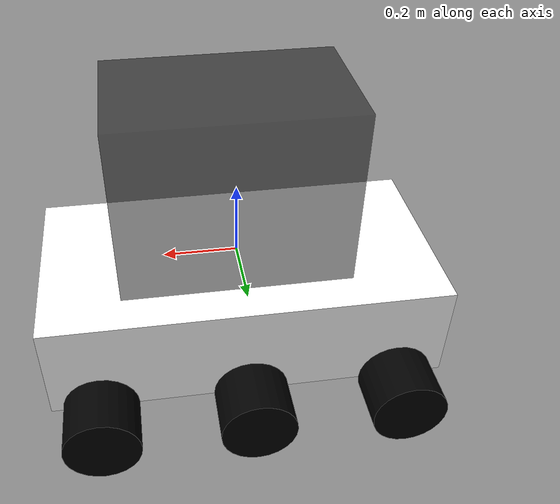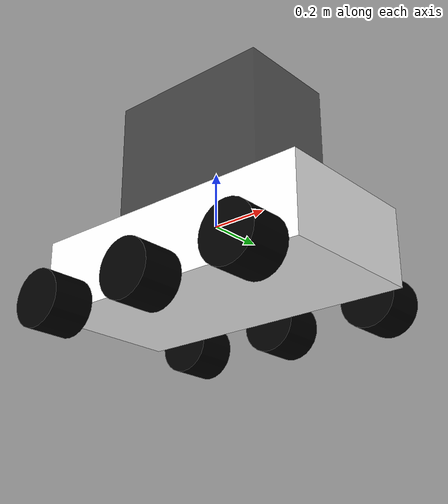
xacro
<?xml version="1.0"?>
<robot xmlns:xacro="http://www.ros.org/wiki/xacro" >

    <xacro:include filename="inertial_macros.xacro"/>

    <xacro:property name="chassis_length" value="1.064"/>
    <xacro:property name="chassis_width" value="0.545"/>
    <xacro:property name="chassis_height" value="0.273"/>
    <xacro:property name="chassis_mass" value="140.0"/>
    <xacro:property name="wheel_radius" value="0.1"/>
    <xacro:property name="wheel_thickness" value="0.15"/>
    <xacro:property name="wheel_mass" value="20.0"/>
    <xacro:property name="wheel_offset_x" value="0.532"/>
    <xacro:property name="wheel_offset_y" value="${chassis_width/2 + wheel_thickness/2}"/>
    <xacro:property name="wheel_offset_z" value="${chassis_height}"/>
    <xacro:property name="wheel_spacing" value="0.4"/>
    <xacro:property name="caster_wheel_radius" value="${wheel_radius}"/>
    <xacro:property name="caster_wheel_mass" value="0.01"/>
    <xacro:property name="caster_wheel_offset_x" value="${chassis_length/2 - caster_wheel_radius}"/>
    <xacro:property name="caster_wheel_offset_z" value="${chassis_height}"/>

    <material name="white">
        <color rgba="1 1 1 1" />
    </material>

    <material name="orange">
        <color rgba="1 0.3 0.1 1"/>
    </material>

    <material name="blue">
        <color rgba="0.2 0.2 1 1"/>
    </material>

    <material name="black">
        <color rgba="0 0 0 1"/>
    </material>

    <material name="black_t">
        <color rgba="0 0 0 0.5"/>
    </material>

    <material name="red">
        <color rgba="1 0 0 1"/>
    </material>

    <!-- BASE LINK -->

    <link name="base_link">

    </link>

    <!-- BASE_FOOTPRINT LINK -->

    <joint name="base_footprint_joint" type="fixed">
        <parent link="base_link"/>
        <child link="base_footprint"/>
        <origin xyz="0 0 ${-chassis_height - wheel_radius}" rpy="0 0 0"/>
    </joint>

    <link name="base_footprint">
    </link>

    <!-- CHASSIS LINK -->

    <joint name="chassis_joint" type="fixed">
        <parent link="base_link"/>
        <child link="chassis"/>
        <origin xyz="${-wheel_offset_x} 0 ${-chassis_height/2}"/>
    </joint>

    <link name="chassis">
        <visual>
            <origin xyz="${chassis_length/2} 0 0"/>
            <geometry>
                <box size="${chassis_length} ${chassis_width} ${chassis_height}"/>
            </geometry>
            <material name="white"/>
        </visual>
        <collision>
            <origin xyz="${chassis_length/2} 0 0"/>
            <geometry>
                <box size="${chassis_length} ${chassis_width} ${chassis_height}"/>
            </geometry>
        </collision>
        <xacro:inertial_box mass="${chassis_mass}" x="${chassis_length}" y="${chassis_width}" z="${chassis_height}">
            <origin xyz="${chassis_length/2} 0 0" rpy="0 0 0"/>
        </xacro:inertial_box>
    </link>

    <gazebo reference="chassis">
        <material>Gazebo/White</material>
    </gazebo>

    <!-- LEFT WHEEL LINK -->

    <joint name="left_wheel_center_joint" type="continuous">
        <parent link="base_link"/>
        <child link="left_wheel_center"/>
        <origin xyz="0 ${wheel_offset_y} ${-wheel_offset_z}" rpy="-${pi/2} 0 0" />
        <axis xyz="0 0 1"/>
    </joint>

    <link name="left_wheel_center">
        <visual>
            <geometry>
                <cylinder radius="${wheel_radius}" length="${wheel_thickness}"/>
            </geometry>
            <material name="black"/>
        </visual>
        <collision>
            <geometry>
                <sphere radius="${wheel_radius}"/>
            </geometry>
        </collision>
        <xacro:inertial_cylinder mass="${wheel_mass}" length="${wheel_thickness}" radius="${wheel_radius}">
            <origin xyz="0 0 0" rpy="0 0 0"/>
        </xacro:inertial_cylinder>
    </link>

    <gazebo reference="left_wheel_center">
        <material>Gazebo/Black</material>
    </gazebo>

    <joint name="left_wheel_front_joint" type="continuous">
        <parent link="base_link"/>
        <child link="left_wheel_front"/>
        <origin xyz="${wheel_spacing} ${wheel_offset_y} ${-wheel_offset_z}" rpy="-${pi/2} 0 0" />
        <axis xyz="0 0 1"/>
    </joint>

    <link name="left_wheel_front">
        <visual>
            <geometry>
                <cylinder radius="${wheel_radius}" length="${wheel_thickness}"/>
            </geometry>
            <material name="black"/>
        </visual>
        <collision>
            <geometry>
                <sphere radius="${wheel_radius}"/>
            </geometry>
        </collision>
        <xacro:inertial_cylinder mass="${wheel_mass}" length="${wheel_thickness}" radius="${wheel_radius}">
            <origin xyz="0 0 0" rpy="0 0 0"/>
        </xacro:inertial_cylinder>
    </link>

    <gazebo reference="left_wheel_front">
        <material>Gazebo/Black</material>
    </gazebo>

    <joint name="left_wheel_back_joint" type="continuous">
        <parent link="base_link"/>
        <child link="left_wheel_back"/>
        <origin xyz="${-wheel_spacing} ${wheel_offset_y} ${-wheel_offset_z}" rpy="-${pi/2} 0 0" />
        <axis xyz="0 0 1"/>
    </joint>

    <link name="left_wheel_back">
        <visual>
            <geometry>
                <cylinder radius="${wheel_radius}" length="${wheel_thickness}"/>
            </geometry>
            <material name="black"/>
        </visual>
        <collision>
            <geometry>
                <sphere radius="${wheel_radius}"/>
            </geometry>
        </collision>
        <xacro:inertial_cylinder mass="${wheel_mass}" length="${wheel_thickness}" radius="${wheel_radius}">
            <origin xyz="0 0 0" rpy="0 0 0"/>
        </xacro:inertial_cylinder>
    </link>

    <gazebo reference="left_wheel_back">
        <material>Gazebo/Black</material>
    </gazebo>

    <!-- RIGHT WHEEL LINK -->

    <joint name="right_wheel_center_joint" type="continuous">
        <parent link="base_link"/>
        <child link="right_wheel_center"/>
        <origin xyz="0 ${-wheel_offset_y} ${-wheel_offset_z}" rpy="${pi/2} 0 0" />
        <axis xyz="0 0 -1"/>
    </joint>

    <link name="right_wheel_center">
        <visual>
            <geometry>
                <cylinder radius="${wheel_radius}" length="${wheel_thickness}"/>
            </geometry>
            <material name="black"/>
        </visual>
        <collision>
            <geometry>
                <sphere radius="${wheel_radius}"/>
            </geometry>
        </collision>
        <xacro:inertial_cylinder mass="${wheel_mass}" length="${wheel_thickness}" radius="${wheel_radius}">
            <origin xyz="0 0 0" rpy="0 0 0"/>
        </xacro:inertial_cylinder>
    </link>

    <gazebo reference="right_wheel_center">
        <material>Gazebo/Black</material>
    </gazebo>

    <joint name="right_wheel_front_joint" type="continuous">
        <parent link="base_link"/>
        <child link="right_wheel_front"/>
        <origin xyz="${wheel_spacing} ${-wheel_offset_y} ${-wheel_offset_z}" rpy="${pi/2} 0 0" />
        <axis xyz="0 0 -1"/>
    </joint>

    <link name="right_wheel_front">
        <visual>
            <geometry>
                <cylinder radius="${wheel_radius}" length="${wheel_thickness}"/>
            </geometry>
            <material name="black"/>
        </visual>
        <collision>
            <geometry>
                <sphere radius="${wheel_radius}"/>
            </geometry>
        </collision>
        <xacro:inertial_cylinder mass="${wheel_mass}" length="${wheel_thickness}" radius="${wheel_radius}">
            <origin xyz="0 0 0" rpy="0 0 0"/>
        </xacro:inertial_cylinder>
    </link>

    <gazebo reference="right_wheel_front">
        <material>Gazebo/Black</material>
    </gazebo>

    <joint name="right_wheel_back_joint" type="continuous">
        <parent link="base_link"/>
        <child link="right_wheel_back"/>
        <origin xyz="${-wheel_spacing} ${-wheel_offset_y} ${-wheel_offset_z}" rpy="${pi/2} 0 0" />
        <axis xyz="0 0 -1"/>
    </joint>

    <link name="right_wheel_back">
        <visual>
            <geometry>
                <cylinder radius="${wheel_radius}" length="${wheel_thickness}"/>
            </geometry>
            <material name="black"/>
        </visual>
        <collision>
            <geometry>
                <sphere radius="${wheel_radius}"/>
            </geometry>
        </collision>
        <xacro:inertial_cylinder mass="${wheel_mass}" length="${wheel_thickness}" radius="${wheel_radius}">
            <origin xyz="0 0 0" rpy="0 0 0"/>
        </xacro:inertial_cylinder>
    </link>

    <gazebo reference="right_wheel_back">
        <material>Gazebo/Black</material>
    </gazebo>

    <link name="rack">
        <visual>
            <origin xyz=" 0 0 0"/>
            <geometry>
                <box size="0.6 0.37 0.47"/>
            </geometry>
            <material name="black_t"/>
        </visual>
        <collision>
            <origin xyz="0 0 0"/>
            <geometry>
                <box size="${chassis_length*0.6} ${chassis_width*0.8} 0.5"/>
            </geometry>
        </collision>
        <xacro:inertial_box mass="0.1" x="${chassis_length*0.6}" y="${chassis_width*0.8}" z="0.5">
            <origin xyz="0 0 0" rpy="0 0 0"/>
        </xacro:inertial_box>
    </link>

    <joint name="base2rack" type="fixed">
        <parent link="base_link"/>
        <child link="rack"/>
        <origin xyz="0.02 0 0.25"/>
    </joint>

</robot>
